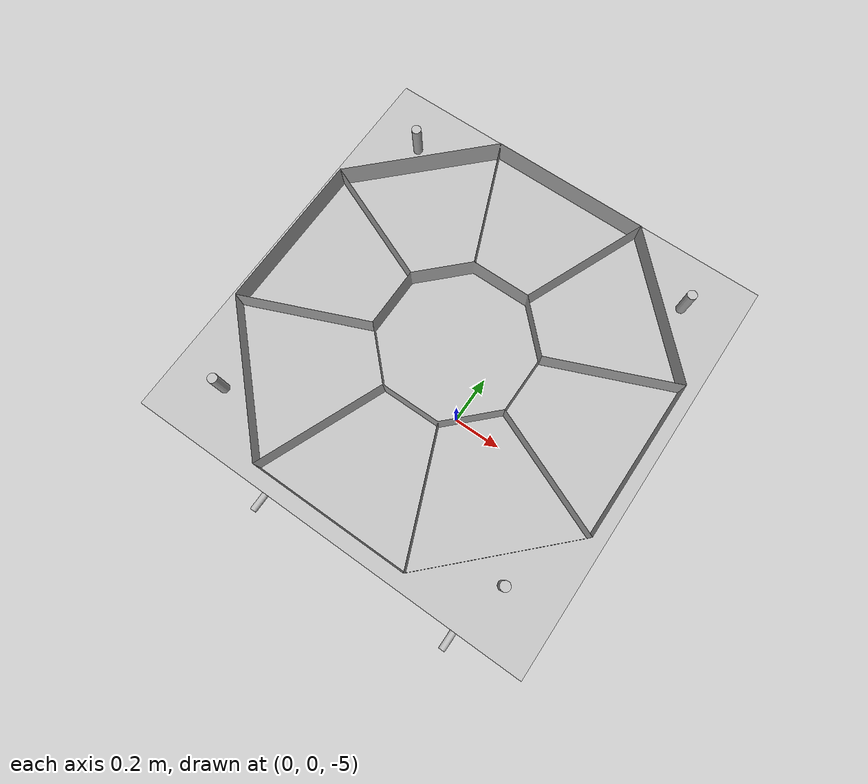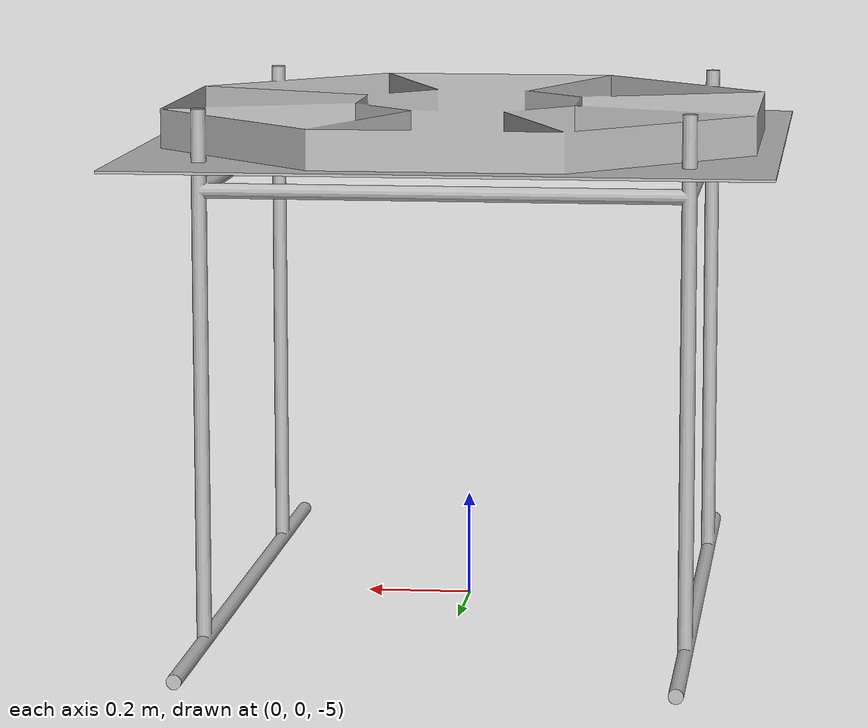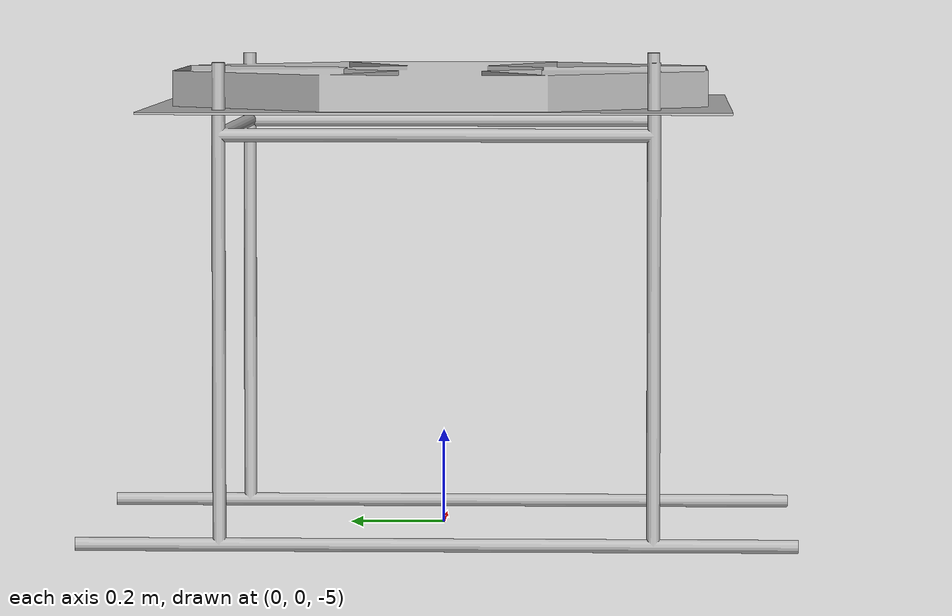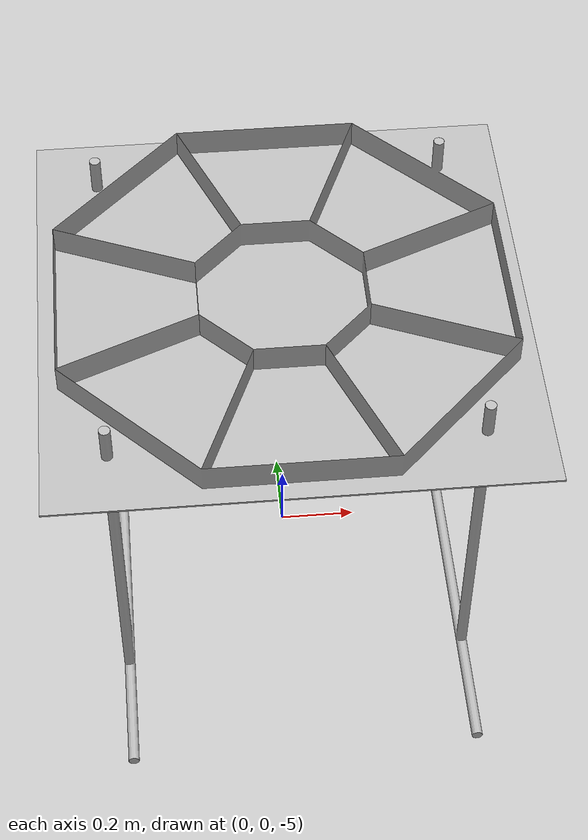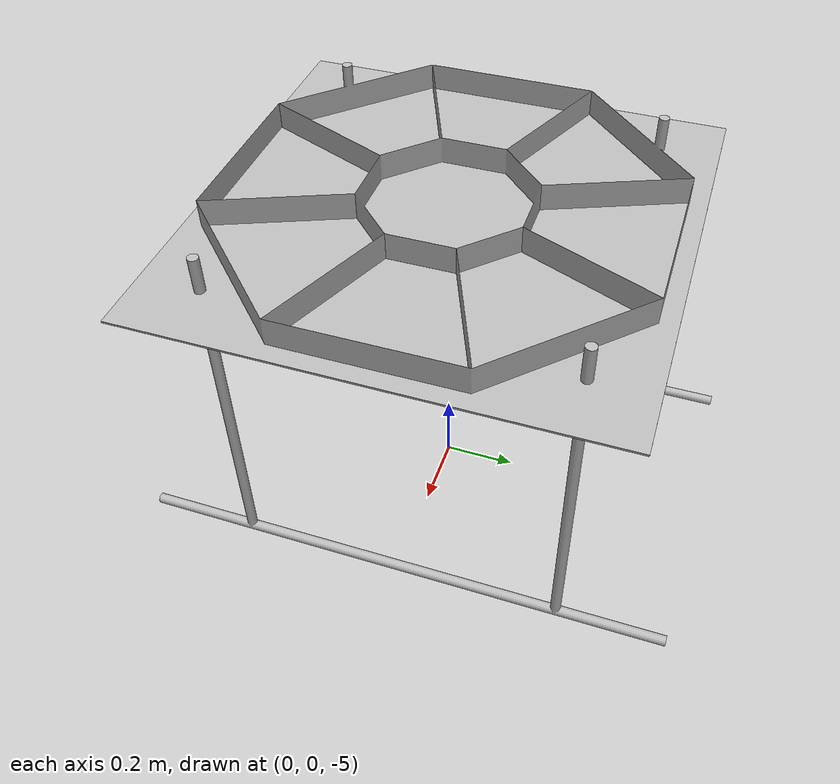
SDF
<?xml version="1.0"?>
<sdf version="1.11">  <model name="robosub23_octagon">
    <static>1</static>

    <link name="octagon">
      <pose>0 0 0 0 0 0</pose>
      <visual name="octagon_vis">
        <pose>0 0 0 0 0 0</pose>
        <geometry>
          <mesh>
            <uri>model://robosub23_octagon/octagon.dae</uri>
          </mesh>
        </geometry>
      </visual>
      <collision name="octagon_collision">
        <pose>0 0 0 0 0 0</pose>
        <geometry>
          <mesh>
            <uri>model://robosub23_octagon/octagon.dae</uri>
          </mesh>
        </geometry>
      </collision>
    </link>

    <link name="dhd">
      <pose>0 0 0 0 0 0</pose>
      <visual name="dhd_vis">
        <pose>0 0 -5 0 0 0</pose>
        <geometry>
          <mesh>
            <uri>model://robosub23_octagon/dhd.dae</uri>
          </mesh>
          <material>
          <ambient>1 1 1 1</ambient>
          <diffuse>1 1 1 1</diffuse>
          <specular>0.1 0.1 0.1 1</specular>
        </material>
        </geometry>
      </visual>
      <collision name="dhd_collision">
        <pose>0 0 -5 0 0 0</pose>
        <geometry>
          <mesh>
            <uri>model://robosub23_octagon/dhd.dae</uri>
          </mesh>
        </geometry>
      </collision>
      <collision name="dhd_collision_surface">
        <pose>0 0 -4.1 0 0 0</pose>
        <geometry>
          <box>
            <size>1.2192 1.2192 0.01</size>
          </box>
        </geometry>
      </collision>
    </link>

    <link name="DHD_image">
      <pose>0 0 -4.1 0 0 0</pose>
      <visual name="dhd_image">
        <geometry>
          <box>
            <size>1.2192 1.2192 0.005</size>
          </box>
        </geometry>
        <material>
          <script>
            <uri>file://materials/scripts/dhd.material</uri>
            <name>TexturedShape/2023_DHD</name>
          </script>
        </material>
      </visual>
    </link>
  </model>
</sdf>
